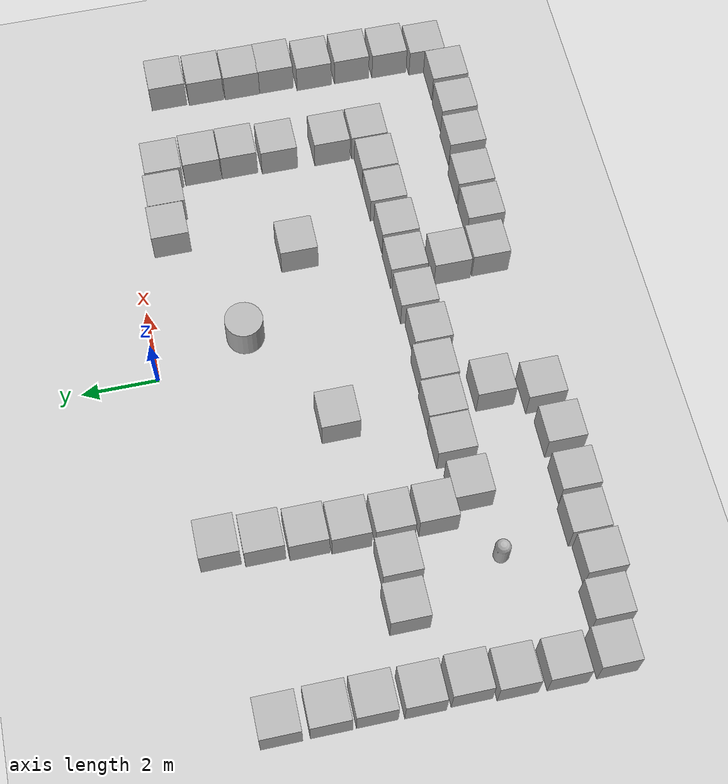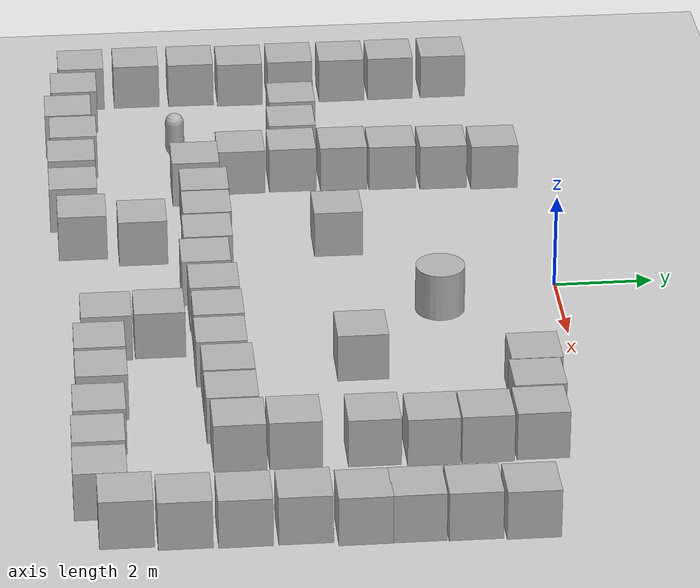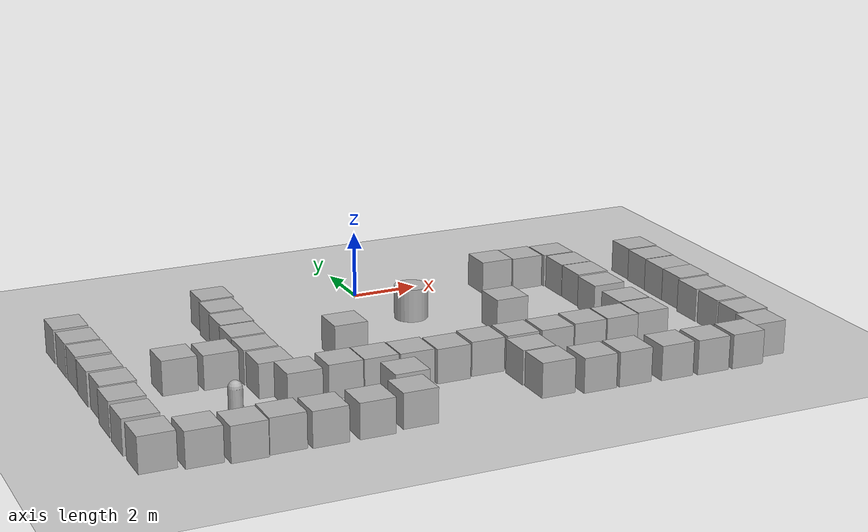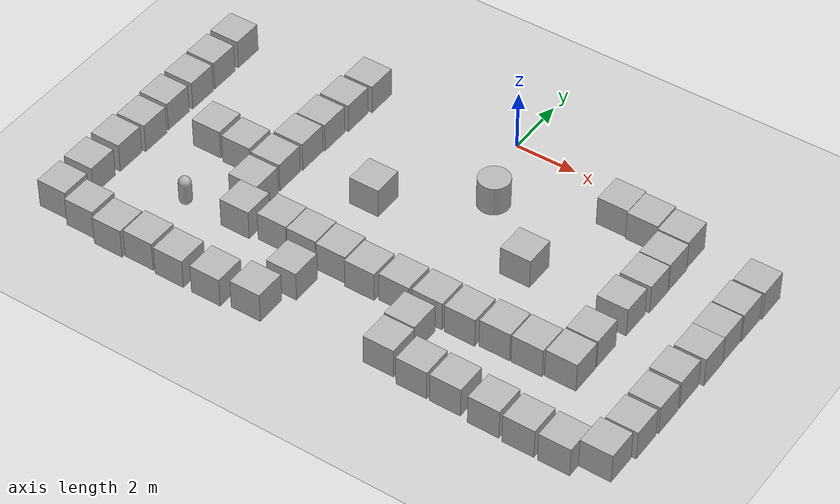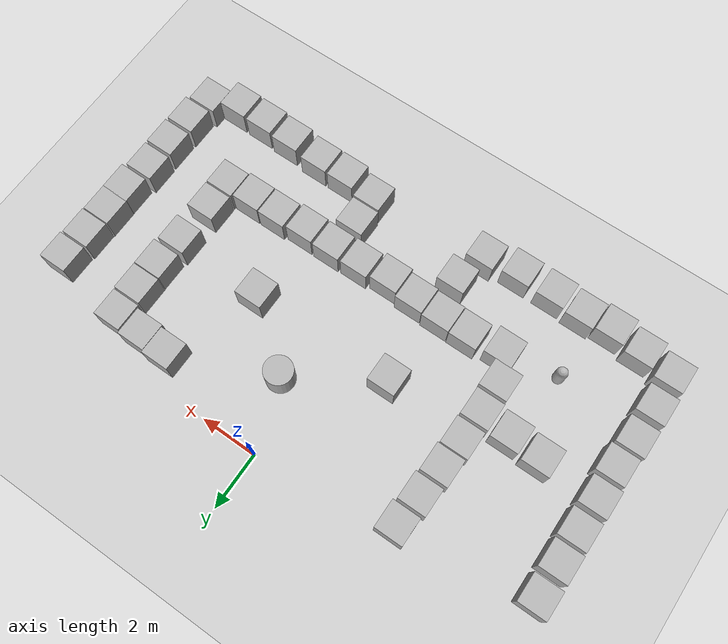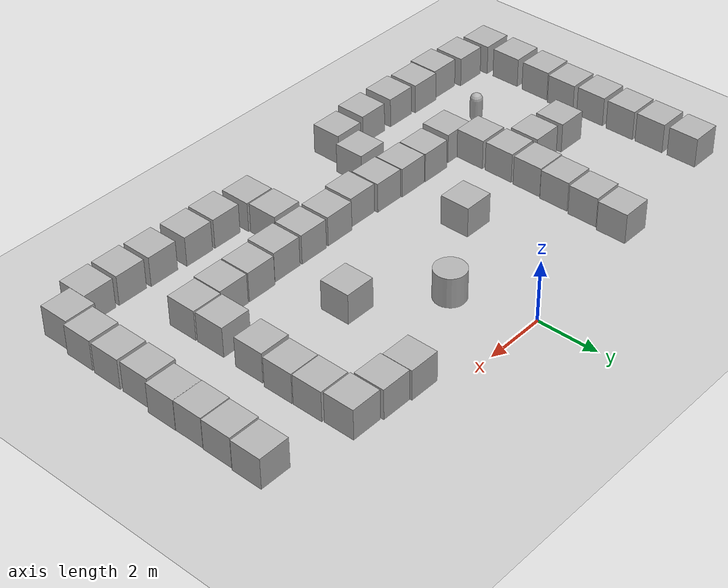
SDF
<sdf version="1.9">
 <world name="empty">
  <model name="ground_plane">
   <static>true</static>
   <link name="link">
    <collision name="collision">
     <geometry><plane><normal>0 0 1</normal><size>100 100</size></plane></geometry>
    </collision>
    <visual name="visual">
     <geometry><plane><normal>0 0 1</normal><size>100 100</size></plane></geometry>
     <material>
      <ambient>0.8 0.8 0.8 1</ambient>
      <diffuse>0.8 0.8 0.8 1</diffuse>
      <specular>0.8 0.8 0.8 1</specular>
     </material>
    </visual>
    <inertial>
     <mass>1</mass>
     <inertia><ixx>1</ixx><ixy>0</ixy><ixz>0</ixz><iyy>1</iyy><iyz>0</iyz><izz>1</izz></inertia>
    </inertial>
   </link>
  </model>
  <model name="box_2">
   <pose>4.13558 -0.985724 0.5 0 -0 0</pose>
   <link name="box_link">
    <inertial>
     <inertia><ixx>0.16666</ixx><ixy>0</ixy><ixz>0</ixz><iyy>0.16666</iyy><iyz>0</iyz><izz>0.16666</izz></inertia>
     <mass>1</mass>
    </inertial>
    <collision name="box_collision"><geometry><box><size>1 1 1</size></box></geometry></collision>
    <visual name="box_visual">
     <geometry><box><size>1 1 1</size></box></geometry>
     <material>
      <ambient>0.3 0.3 0.3 1</ambient>
      <diffuse>0.7 0.7 0.7 1</diffuse>
      <specular>1 1 1 1</specular>
     </material>
    </visual>
   </link>
   <static>false</static>
  </model>
  <model name="box_3">
   <pose>5.14532 -1.0495 0.5 0 -0 0</pose>
   <link name="box_link">
    <inertial>
     <inertia><ixx>0.16666</ixx><ixy>0</ixy><ixz>0</ixz><iyy>0.16666</iyy><iyz>0</iyz><izz>0.16666</izz></inertia>
     <mass>1</mass>
    </inertial>
    <collision name="box_collision"><geometry><box><size>1 1 1</size></box></geometry></collision>
    <visual name="box_visual">
     <geometry><box><size>1 1 1</size></box></geometry>
     <material>
      <ambient>0.3 0.3 0.3 1</ambient>
      <diffuse>0.7 0.7 0.7 1</diffuse>
      <specular>1 1 1 1</specular>
     </material>
    </visual>
   </link>
   <static>false</static>
  </model>
  <model name="box_4">
   <pose>6.19145 -1.12646 0.5 0 -0 0</pose>
   <link name="box_link">
    <inertial>
     <inertia><ixx>0.16666</ixx><ixy>0</ixy><ixz>0</ixz><iyy>0.16666</iyy><iyz>0</iyz><izz>0.16666</izz></inertia>
     <mass>1</mass>
    </inertial>
    <collision name="box_collision"><geometry><box><size>1 1 1</size></box></geometry></collision>
    <visual name="box_visual">
     <geometry><box><size>1 1 1</size></box></geometry>
     <material>
      <ambient>0.3 0.3 0.3 1</ambient>
      <diffuse>0.7 0.7 0.7 1</diffuse>
      <specular>1 1 1 1</specular>
     </material>
    </visual>
   </link>
   <static>false</static>
  </model>
  <model name="box_5">
   <pose>8.86919 -2.71605 0.5 0 -0 0</pose>
   <link name="box_link">
    <inertial>
     <inertia><ixx>0.16666</ixx><ixy>0</ixy><ixz>0</ixz><iyy>0.16666</iyy><iyz>0</iyz><izz>0.16666</izz></inertia>
     <mass>1</mass>
    </inertial>
    <collision name="box_collision"><geometry><box><size>1 1 1</size></box></geometry></collision>
    <visual name="box_visual">
     <geometry><box><size>1 1 1</size></box></geometry>
     <material>
      <ambient>0.3 0.3 0.3 1</ambient>
      <diffuse>0.7 0.7 0.7 1</diffuse>
      <specular>1 1 1 1</specular>
     </material>
    </visual>
   </link>
   <static>false</static>
  </model>
  <model name="box_6">
   <pose>6.22858 -2.1758 0.5 0 -0 0</pose>
   <link name="box_link">
    <inertial>
     <inertia><ixx>0.16666</ixx><ixy>0</ixy><ixz>0</ixz><iyy>0.16666</iyy><iyz>0</iyz><izz>0.16666</izz></inertia>
     <mass>1</mass>
    </inertial>
    <collision name="box_collision"><geometry><box><size>1 1 1</size></box></geometry></collision>
    <visual name="box_visual">
     <geometry><box><size>1 1 1</size></box></geometry>
     <material>
      <ambient>0.3 0.3 0.3 1</ambient>
      <diffuse>0.7 0.7 0.7 1</diffuse>
      <specular>1 1 1 1</specular>
     </material>
    </visual>
   </link>
   <static>false</static>
  </model>
  <model name="box_7">
   <pose>6.23565 -3.20198 0.5 0 -0 0</pose>
   <link name="box_link">
    <inertial>
     <inertia><ixx>0.16666</ixx><ixy>0</ixy><ixz>0</ixz><iyy>0.16666</iyy><iyz>0</iyz><izz>0.16666</izz></inertia>
     <mass>1</mass>
    </inertial>
    <collision name="box_collision"><geometry><box><size>1 1 1</size></box></geometry></collision>
    <visual name="box_visual">
     <geometry><box><size>1 1 1</size></box></geometry>
     <material>
      <ambient>0.3 0.3 0.3 1</ambient>
      <diffuse>0.7 0.7 0.7 1</diffuse>
      <specular>1 1 1 1</specular>
     </material>
    </visual>
   </link>
   <static>false</static>
  </model>
  <model name="box_8">
   <pose>6.1657 -4.3144 0.5 0 -0 0</pose>
   <link name="box_link">
    <inertial>
     <inertia><ixx>0.16666</ixx><ixy>0</ixy><ixz>0</ixz><iyy>0.16666</iyy><iyz>0</iyz><izz>0.16666</izz></inertia>
     <mass>1</mass>
    </inertial>
    <collision name="box_collision"><geometry><box><size>1 1 1</size></box></geometry></collision>
    <visual name="box_visual">
     <geometry><box><size>1 1 1</size></box></geometry>
     <material>
      <ambient>0.3 0.3 0.3 1</ambient>
      <diffuse>0.7 0.7 0.7 1</diffuse>
      <specular>1 1 1 1</specular>
     </material>
    </visual>
   </link>
   <static>false</static>
  </model>
  <model name="box_23">
   <pose>-4.83006 -0.710249 0.5 0 -0 0</pose>
   <link name="box_link">
    <inertial>
     <inertia><ixx>0.16666</ixx><ixy>0</ixy><ixz>0</ixz><iyy>0.16666</iyy><iyz>0</iyz><izz>0.16666</izz></inertia>
     <mass>1</mass>
    </inertial>
    <collision name="box_collision"><geometry><box><size>1 1 1</size></box></geometry></collision>
    <visual name="box_visual">
     <geometry><box><size>1 1 1</size></box></geometry>
     <material>
      <ambient>0.3 0.3 0.3 1</ambient>
      <diffuse>0.7 0.7 0.7 1</diffuse>
      <specular>1 1 1 1</specular>
     </material>
    </visual>
   </link>
   <static>false</static>
  </model>
  <model name="box_24">
   <pose>-4.92357 -1.79655 0.5 0 -0 0</pose>
   <link name="box_link">
    <inertial>
     <inertia><ixx>0.16666</ixx><ixy>0</ixy><ixz>0</ixz><iyy>0.16666</iyy><iyz>0</iyz><izz>0.16666</izz></inertia>
     <mass>1</mass>
    </inertial>
    <collision name="box_collision"><geometry><box><size>1 1 1</size></box></geometry></collision>
    <visual name="box_visual">
     <geometry><box><size>1 1 1</size></box></geometry>
     <material>
      <ambient>0.3 0.3 0.3 1</ambient>
      <diffuse>0.7 0.7 0.7 1</diffuse>
      <specular>1 1 1 1</specular>
     </material>
    </visual>
   </link>
   <static>false</static>
  </model>
  <model name="box_25">
   <pose>-4.99469 -2.88184 0.5 0 -0 0</pose>
   <link name="box_link">
    <inertial>
     <inertia><ixx>0.16666</ixx><ixy>0</ixy><ixz>0</ixz><iyy>0.16666</iyy><iyz>0</iyz><izz>0.16666</izz></inertia>
     <mass>1</mass>
    </inertial>
    <collision name="box_collision"><geometry><box><size>1 1 1</size></box></geometry></collision>
    <visual name="box_visual">
     <geometry><box><size>1 1 1</size></box></geometry>
     <material>
      <ambient>0.3 0.3 0.3 1</ambient>
      <diffuse>0.7 0.7 0.7 1</diffuse>
      <specular>1 1 1 1</specular>
     </material>
    </visual>
   </link>
   <static>false</static>
  </model>
  <model name="box_26">
   <pose>-5.04236 -3.92055 0.5 0 -0 0</pose>
   <link name="box_link">
    <inertial>
     <inertia><ixx>0.16666</ixx><ixy>0</ixy><ixz>0</ixz><iyy>0.16666</iyy><iyz>0</iyz><izz>0.16666</izz></inertia>
     <mass>1</mass>
    </inertial>
    <collision name="box_collision"><geometry><box><size>1 1 1</size></box></geometry></collision>
    <visual name="box_visual">
     <geometry><box><size>1 1 1</size></box></geometry>
     <material>
      <ambient>0.3 0.3 0.3 1</ambient>
      <diffuse>0.7 0.7 0.7 1</diffuse>
      <specular>1 1 1 1</specular>
     </material>
    </visual>
   </link>
   <static>false</static>
  </model>
  <model name="box_27">
   <pose>-5.06868 -5.00835 0.5 0 -0 0</pose>
   <link name="box_link">
    <inertial>
     <inertia><ixx>0.16666</ixx><ixy>0</ixy><ixz>0</ixz><iyy>0.16666</iyy><iyz>0</iyz><izz>0.16666</izz></inertia>
     <mass>1</mass>
    </inertial>
    <collision name="box_collision"><geometry><box><size>1 1 1</size></box></geometry></collision>
    <visual name="box_visual">
     <geometry><box><size>1 1 1</size></box></geometry>
     <material>
      <ambient>0.3 0.3 0.3 1</ambient>
      <diffuse>0.7 0.7 0.7 1</diffuse>
      <specular>1 1 1 1</specular>
     </material>
    </visual>
   </link>
   <static>false</static>
  </model>
  <model name="box_28">
   <pose>-5.0497 -6.10238 0.5 0 -0 0</pose>
   <link name="box_link">
    <inertial>
     <inertia><ixx>0.16666</ixx><ixy>0</ixy><ixz>0</ixz><iyy>0.16666</iyy><iyz>0</iyz><izz>0.16666</izz></inertia>
     <mass>1</mass>
    </inertial>
    <collision name="box_collision"><geometry><box><size>1 1 1</size></box></geometry></collision>
    <visual name="box_visual">
     <geometry><box><size>1 1 1</size></box></geometry>
     <material>
      <ambient>0.3 0.3 0.3 1</ambient>
      <diffuse>0.7 0.7 0.7 1</diffuse>
      <specular>1 1 1 1</specular>
     </material>
    </visual>
   </link>
   <static>false</static>
  </model>
  <model name="box_29">
   <pose>6.12407 -5.79524 0.5 0 -0 0</pose>
   <link name="box_link">
    <inertial>
     <inertia><ixx>0.16666</ixx><ixy>0</ixy><ixz>0</ixz><iyy>0.16666</iyy><iyz>0</iyz><izz>0.16666</izz></inertia>
     <mass>1</mass>
    </inertial>
    <collision name="box_collision"><geometry><box><size>1 1 1</size></box></geometry></collision>
    <visual name="box_visual">
     <geometry><box><size>1 1 1</size></box></geometry>
     <material>
      <ambient>0.3 0.3 0.3 1</ambient>
      <diffuse>0.7 0.7 0.7 1</diffuse>
      <specular>1 1 1 1</specular>
     </material>
    </visual>
   </link>
   <static>false</static>
  </model>
  <model name="box_30">
   <pose>6.13132 -6.8447 0.5 0 -0 0</pose>
   <link name="box_link">
    <inertial>
     <inertia><ixx>0.16666</ixx><ixy>0</ixy><ixz>0</ixz><iyy>0.16666</iyy><iyz>0</iyz><izz>0.16666</izz></inertia>
     <mass>1</mass>
    </inertial>
    <collision name="box_collision"><geometry><box><size>1 1 1</size></box></geometry></collision>
    <visual name="box_visual">
     <geometry><box><size>1 1 1</size></box></geometry>
     <material>
      <ambient>0.3 0.3 0.3 1</ambient>
      <diffuse>0.7 0.7 0.7 1</diffuse>
      <specular>1 1 1 1</specular>
     </material>
    </visual>
   </link>
   <static>false</static>
  </model>
  <model name="box_31">
   <pose>5.09836 -6.91237 0.5 0 -0 0</pose>
   <link name="box_link">
    <inertial>
     <inertia><ixx>0.16666</ixx><ixy>0</ixy><ixz>0</ixz><iyy>0.16666</iyy><iyz>0</iyz><izz>0.16666</izz></inertia>
     <mass>1</mass>
    </inertial>
    <collision name="box_collision"><geometry><box><size>1 1 1</size></box></geometry></collision>
    <visual name="box_visual">
     <geometry><box><size>1 1 1</size></box></geometry>
     <material>
      <ambient>0.3 0.3 0.3 1</ambient>
      <diffuse>0.7 0.7 0.7 1</diffuse>
      <specular>1 1 1 1</specular>
     </material>
    </visual>
   </link>
   <static>false</static>
  </model>
  <model name="box_32">
   <pose>4.05564 -6.91326 0.5 0 -0 0</pose>
   <link name="box_link">
    <inertial>
     <inertia><ixx>0.16666</ixx><ixy>0</ixy><ixz>0</ixz><iyy>0.16666</iyy><iyz>0</iyz><izz>0.16666</izz></inertia>
     <mass>1</mass>
    </inertial>
    <collision name="box_collision"><geometry><box><size>1 1 1</size></box></geometry></collision>
    <visual name="box_visual">
     <geometry><box><size>1 1 1</size></box></geometry>
     <material>
      <ambient>0.3 0.3 0.3 1</ambient>
      <diffuse>0.7 0.7 0.7 1</diffuse>
      <specular>1 1 1 1</specular>
     </material>
    </visual>
   </link>
   <static>false</static>
  </model>
  <model name="box_33">
   <pose>2.97347 -6.99341 0.5 0 -0 0</pose>
   <link name="box_link">
    <inertial>
     <inertia><ixx>0.16666</ixx><ixy>0</ixy><ixz>0</ixz><iyy>0.16666</iyy><iyz>0</iyz><izz>0.16666</izz></inertia>
     <mass>1</mass>
    </inertial>
    <collision name="box_collision"><geometry><box><size>1 1 1</size></box></geometry></collision>
    <visual name="box_visual">
     <geometry><box><size>1 1 1</size></box></geometry>
     <material>
      <ambient>0.3 0.3 0.3 1</ambient>
      <diffuse>0.7 0.7 0.7 1</diffuse>
      <specular>1 1 1 1</specular>
     </material>
    </visual>
   </link>
   <static>false</static>
  </model>
  <model name="box_34">
   <pose>1.89461 -6.98248 0.5 0 -0 0</pose>
   <link name="box_link">
    <inertial>
     <inertia><ixx>0.16666</ixx><ixy>0</ixy><ixz>0</ixz><iyy>0.16666</iyy><iyz>0</iyz><izz>0.16666</izz></inertia>
     <mass>1</mass>
    </inertial>
    <collision name="box_collision"><geometry><box><size>1 1 1</size></box></geometry></collision>
    <visual name="box_visual">
     <geometry><box><size>1 1 1</size></box></geometry>
     <material>
      <ambient>0.3 0.3 0.3 1</ambient>
      <diffuse>0.7 0.7 0.7 1</diffuse>
      <specular>1 1 1 1</specular>
     </material>
    </visual>
   </link>
   <static>false</static>
  </model>
  <model name="box_35">
   <pose>0.79959 -7.00351 0.5 0 -0 0</pose>
   <link name="box_link">
    <inertial>
     <inertia><ixx>0.16666</ixx><ixy>0</ixy><ixz>0</ixz><iyy>0.16666</iyy><iyz>0</iyz><izz>0.16666</izz></inertia>
     <mass>1</mass>
    </inertial>
    <collision name="box_collision"><geometry><box><size>1 1 1</size></box></geometry></collision>
    <visual name="box_visual">
     <geometry><box><size>1 1 1</size></box></geometry>
     <material>
      <ambient>0.3 0.3 0.3 1</ambient>
      <diffuse>0.7 0.7 0.7 1</diffuse>
      <specular>1 1 1 1</specular>
     </material>
    </visual>
   </link>
   <static>false</static>
  </model>
  <model name="box_36">
   <pose>-0.288194 -7.10821 0.5 0 -0 0</pose>
   <link name="box_link">
    <inertial>
     <inertia><ixx>0.16666</ixx><ixy>0</ixy><ixz>0</ixz><iyy>0.16666</iyy><iyz>0</iyz><izz>0.16666</izz></inertia>
     <mass>1</mass>
    </inertial>
    <collision name="box_collision"><geometry><box><size>1 1 1</size></box></geometry></collision>
    <visual name="box_visual">
     <geometry><box><size>1 1 1</size></box></geometry>
     <material>
      <ambient>0.3 0.3 0.3 1</ambient>
      <diffuse>0.7 0.7 0.7 1</diffuse>
      <specular>1 1 1 1</specular>
     </material>
    </visual>
   </link>
   <static>false</static>
  </model>
  <model name="box_37">
   <pose>-1.33272 -7.01143 0.5 0 -0 0</pose>
   <link name="box_link">
    <inertial>
     <inertia><ixx>0.16666</ixx><ixy>0</ixy><ixz>0</ixz><iyy>0.16666</iyy><iyz>0</iyz><izz>0.16666</izz></inertia>
     <mass>1</mass>
    </inertial>
    <collision name="box_collision"><geometry><box><size>1 1 1</size></box></geometry></collision>
    <visual name="box_visual">
     <geometry><box><size>1 1 1</size></box></geometry>
     <material>
      <ambient>0.3 0.3 0.3 1</ambient>
      <diffuse>0.7 0.7 0.7 1</diffuse>
      <specular>1 1 1 1</specular>
     </material>
    </visual>
   </link>
   <static>false</static>
  </model>
  <model name="box_38">
   <pose>-2.36921 -6.97202 0.5 0 -0 0</pose>
   <link name="box_link">
    <inertial>
     <inertia><ixx>0.16666</ixx><ixy>0</ixy><ixz>0</ixz><iyy>0.16666</iyy><iyz>0</iyz><izz>0.16666</izz></inertia>
     <mass>1</mass>
    </inertial>
    <collision name="box_collision"><geometry><box><size>1 1 1</size></box></geometry></collision>
    <visual name="box_visual">
     <geometry><box><size>1 1 1</size></box></geometry>
     <material>
      <ambient>0.3 0.3 0.3 1</ambient>
      <diffuse>0.7 0.7 0.7 1</diffuse>
      <specular>1 1 1 1</specular>
     </material>
    </visual>
   </link>
   <static>false</static>
  </model>
  <model name="box_39">
   <pose>-3.39624 -6.95954 0.5 0 -0 0</pose>
   <link name="box_link">
    <inertial>
     <inertia><ixx>0.16666</ixx><ixy>0</ixy><ixz>0</ixz><iyy>0.16666</iyy><iyz>0</iyz><izz>0.16666</izz></inertia>
     <mass>1</mass>
    </inertial>
    <collision name="box_collision"><geometry><box><size>1 1 1</size></box></geometry></collision>
    <visual name="box_visual">
     <geometry><box><size>1 1 1</size></box></geometry>
     <material>
      <ambient>0.3 0.3 0.3 1</ambient>
      <diffuse>0.7 0.7 0.7 1</diffuse>
      <specular>1 1 1 1</specular>
     </material>
    </visual>
   </link>
   <static>false</static>
  </model>
  <model name="box_40">
   <pose>-4.61406 -7.09221 0.5 0 -0 0</pose>
   <link name="box_link">
    <inertial>
     <inertia><ixx>0.16666</ixx><ixy>0</ixy><ixz>0</ixz><iyy>0.16666</iyy><iyz>0</iyz><izz>0.16666</izz></inertia>
     <mass>1</mass>
    </inertial>
    <collision name="box_collision"><geometry><box><size>1 1 1</size></box></geometry></collision>
    <visual name="box_visual">
     <geometry><box><size>1 1 1</size></box></geometry>
     <material>
      <ambient>0.3 0.3 0.3 1</ambient>
      <diffuse>0.7 0.7 0.7 1</diffuse>
      <specular>1 1 1 1</specular>
     </material>
    </visual>
   </link>
   <static>false</static>
  </model>
  <model name="box_41">
   <pose>-2.12213 -4.28298 0.5 0 -0 0</pose>
   <link name="box_link">
    <inertial>
     <inertia><ixx>0.16666</ixx><ixy>0</ixy><ixz>0</ixz><iyy>0.16666</iyy><iyz>0</iyz><izz>0.16666</izz></inertia>
     <mass>1</mass>
    </inertial>
    <collision name="box_collision"><geometry><box><size>1 1 1</size></box></geometry></collision>
    <visual name="box_visual">
     <geometry><box><size>1 1 1</size></box></geometry>
     <material>
      <ambient>0.3 0.3 0.3 1</ambient>
      <diffuse>0.7 0.7 0.7 1</diffuse>
      <specular>1 1 1 1</specular>
     </material>
    </visual>
   </link>
   <static>false</static>
  </model>
  <model name="box_42">
   <pose>2.97792 -4.23981 0.5 0 -0 0</pose>
   <link name="box_link">
    <inertial>
     <inertia><ixx>0.16666</ixx><ixy>0</ixy><ixz>0</ixz><iyy>0.16666</iyy><iyz>0</iyz><izz>0.16666</izz></inertia>
     <mass>1</mass>
    </inertial>
    <collision name="box_collision"><geometry><box><size>1 1 1</size></box></geometry></collision>
    <visual name="box_visual">
     <geometry><box><size>1 1 1</size></box></geometry>
     <material>
      <ambient>0.3 0.3 0.3 1</ambient>
      <diffuse>0.7 0.7 0.7 1</diffuse>
      <specular>1 1 1 1</specular>
     </material>
    </visual>
   </link>
   <static>false</static>
  </model>
  <model name="cylinder">
   <pose>0.77625 -2.44097 0.5 0 -0 0</pose>
   <link name="cylinder_link">
    <inertial>
     <inertia>
      <ixx>0.14580000000000001</ixx>
      <ixy>0</ixy>
      <ixz>0</ixz>
      <iyy>0.14580000000000001</iyy>
      <iyz>0</iyz>
      <izz>0.125</izz>
     </inertia>
     <mass>1</mass>
    </inertial>
    <collision name="cylinder_collision">
     <geometry><cylinder><radius>0.5</radius><length>1</length></cylinder></geometry>
    </collision>
    <visual name="cylinder_visual">
     <geometry><cylinder><radius>0.5</radius><length>1</length></cylinder></geometry>
     <material>
      <ambient>0.3 0.3 0.3 1</ambient>
      <diffuse>0.7 0.7 0.7 1</diffuse>
      <specular>1 1 1 1</specular>
     </material>
    </visual>
   </link>
   <static>false</static>
  </model>
  <model name="box_47">
   <pose>8.912 -1.65772 0.5 0 -0 0</pose>
   <link name="box_link">
    <inertial>
     <inertia><ixx>0.16666</ixx><ixy>0</ixy><ixz>0</ixz><iyy>0.16666</iyy><iyz>0</iyz><izz>0.16666</izz></inertia>
     <mass>1</mass>
    </inertial>
    <collision name="box_collision"><geometry><box><size>1 1 1</size></box></geometry></collision>
    <visual name="box_visual">
     <geometry><box><size>1 1 1</size></box></geometry>
     <material>
      <ambient>0.3 0.3 0.3 1</ambient>
      <diffuse>0.7 0.7 0.7 1</diffuse>
      <specular>1 1 1 1</specular>
     </material>
    </visual>
   </link>
   <static>false</static>
  </model>
  <model name="box_48">
   <pose>8.84904 -3.74836 0.5 0 -0 0</pose>
   <link name="box_link">
    <inertial>
     <inertia><ixx>0.16666</ixx><ixy>0</ixy><ixz>0</ixz><iyy>0.16666</iyy><iyz>0</iyz><izz>0.16666</izz></inertia>
     <mass>1</mass>
    </inertial>
    <collision name="box_collision"><geometry><box><size>1 1 1</size></box></geometry></collision>
    <visual name="box_visual">
     <geometry><box><size>1 1 1</size></box></geometry>
     <material>
      <ambient>0.3 0.3 0.3 1</ambient>
      <diffuse>0.7 0.7 0.7 1</diffuse>
      <specular>1 1 1 1</specular>
     </material>
    </visual>
   </link>
   <static>false</static>
  </model>
  <model name="box_49">
   <pose>8.85691 -4.72791 0.5 0 -0 0</pose>
   <link name="box_link">
    <inertial>
     <inertia><ixx>0.16666</ixx><ixy>0</ixy><ixz>0</ixz><iyy>0.16666</iyy><iyz>0</iyz><izz>0.16666</izz></inertia>
     <mass>1</mass>
    </inertial>
    <collision name="box_collision"><geometry><box><size>1 1 1</size></box></geometry></collision>
    <visual name="box_visual">
     <geometry><box><size>1 1 1</size></box></geometry>
     <material>
      <ambient>0.3 0.3 0.3 1</ambient>
      <diffuse>0.7 0.7 0.7 1</diffuse>
      <specular>1 1 1 1</specular>
     </material>
    </visual>
   </link>
   <static>false</static>
  </model>
  <model name="box_50">
   <pose>8.73808 -5.81409 0.5 0 -0 0</pose>
   <link name="box_link">
    <inertial>
     <inertia><ixx>0.16666</ixx><ixy>0</ixy><ixz>0</ixz><iyy>0.16666</iyy><iyz>0</iyz><izz>0.16666</izz></inertia>
     <mass>1</mass>
    </inertial>
    <collision name="box_collision"><geometry><box><size>1 1 1</size></box></geometry></collision>
    <visual name="box_visual">
     <geometry><box><size>1 1 1</size></box></geometry>
     <material>
      <ambient>0.3 0.3 0.3 1</ambient>
      <diffuse>0.7 0.7 0.7 1</diffuse>
      <specular>1 1 1 1</specular>
     </material>
    </visual>
   </link>
   <static>false</static>
  </model>
  <model name="box_51">
   <pose>8.74634 -6.90855 0.5 0 -0 0</pose>
   <link name="box_link">
    <inertial>
     <inertia><ixx>0.16666</ixx><ixy>0</ixy><ixz>0</ixz><iyy>0.16666</iyy><iyz>0</iyz><izz>0.16666</izz></inertia>
     <mass>1</mass>
    </inertial>
    <collision name="box_collision"><geometry><box><size>1 1 1</size></box></geometry></collision>
    <visual name="box_visual">
     <geometry><box><size>1 1 1</size></box></geometry>
     <material>
      <ambient>0.3 0.3 0.3 1</ambient>
      <diffuse>0.7 0.7 0.7 1</diffuse>
      <specular>1 1 1 1</specular>
     </material>
    </visual>
   </link>
   <static>false</static>
  </model>
  <model name="box_52">
   <pose>8.72264 -8.00232 0.5 0 -0 0</pose>
   <link name="box_link">
    <inertial>
     <inertia><ixx>0.16666</ixx><ixy>0</ixy><ixz>0</ixz><iyy>0.16666</iyy><iyz>0</iyz><izz>0.16666</izz></inertia>
     <mass>1</mass>
    </inertial>
    <collision name="box_collision"><geometry><box><size>1 1 1</size></box></geometry></collision>
    <visual name="box_visual">
     <geometry><box><size>1 1 1</size></box></geometry>
     <material>
      <ambient>0.3 0.3 0.3 1</ambient>
      <diffuse>0.7 0.7 0.7 1</diffuse>
      <specular>1 1 1 1</specular>
     </material>
    </visual>
   </link>
   <static>false</static>
  </model>
  <model name="box_53">
   <pose>8.60227 -9.06339 0.5 0 -0 0</pose>
   <link name="box_link">
    <inertial>
     <inertia><ixx>0.16666</ixx><ixy>0</ixy><ixz>0</ixz><iyy>0.16666</iyy><iyz>0</iyz><izz>0.16666</izz></inertia>
     <mass>1</mass>
    </inertial>
    <collision name="box_collision"><geometry><box><size>1 1 1</size></box></geometry></collision>
    <visual name="box_visual">
     <geometry><box><size>1 1 1</size></box></geometry>
     <material>
      <ambient>0.3 0.3 0.3 1</ambient>
      <diffuse>0.7 0.7 0.7 1</diffuse>
      <specular>1 1 1 1</specular>
     </material>
    </visual>
   </link>
   <static>false</static>
  </model>
  <model name="box_54">
   <pose>7.60043 -9.49393 0.5 0 -0 0</pose>
   <link name="box_link">
    <inertial>
     <inertia><ixx>0.16666</ixx><ixy>0</ixy><ixz>0</ixz><iyy>0.16666</iyy><iyz>0</iyz><izz>0.16666</izz></inertia>
     <mass>1</mass>
    </inertial>
    <collision name="box_collision"><geometry><box><size>1 1 1</size></box></geometry></collision>
    <visual name="box_visual">
     <geometry><box><size>1 1 1</size></box></geometry>
     <material>
      <ambient>0.3 0.3 0.3 1</ambient>
      <diffuse>0.7 0.7 0.7 1</diffuse>
      <specular>1 1 1 1</specular>
     </material>
    </visual>
   </link>
   <static>false</static>
  </model>
  <model name="box_55">
   <pose>6.48292 -9.48347 0.5 0 -0 0</pose>
   <link name="box_link">
    <inertial>
     <inertia><ixx>0.16666</ixx><ixy>0</ixy><ixz>0</ixz><iyy>0.16666</iyy><iyz>0</iyz><izz>0.16666</izz></inertia>
     <mass>1</mass>
    </inertial>
    <collision name="box_collision"><geometry><box><size>1 1 1</size></box></geometry></collision>
    <visual name="box_visual">
     <geometry><box><size>1 1 1</size></box></geometry>
     <material>
      <ambient>0.3 0.3 0.3 1</ambient>
      <diffuse>0.7 0.7 0.7 1</diffuse>
      <specular>1 1 1 1</specular>
     </material>
    </visual>
   </link>
   <static>false</static>
  </model>
  <model name="box_56">
   <pose>5.35585 -9.43458 0.5 0 -0 0</pose>
   <link name="box_link">
    <inertial>
     <inertia><ixx>0.16666</ixx><ixy>0</ixy><ixz>0</ixz><iyy>0.16666</iyy><iyz>0</iyz><izz>0.16666</izz></inertia>
     <mass>1</mass>
    </inertial>
    <collision name="box_collision"><geometry><box><size>1 1 1</size></box></geometry></collision>
    <visual name="box_visual">
     <geometry><box><size>1 1 1</size></box></geometry>
     <material>
      <ambient>0.3 0.3 0.3 1</ambient>
      <diffuse>0.7 0.7 0.7 1</diffuse>
      <specular>1 1 1 1</specular>
     </material>
    </visual>
   </link>
   <static>false</static>
  </model>
  <model name="box_57">
   <pose>4.08357 -9.35195 0.5 0 -0 0</pose>
   <link name="box_link">
    <inertial>
     <inertia><ixx>0.16666</ixx><ixy>0</ixy><ixz>0</ixz><iyy>0.16666</iyy><iyz>0</iyz><izz>0.16666</izz></inertia>
     <mass>1</mass>
    </inertial>
    <collision name="box_collision"><geometry><box><size>1 1 1</size></box></geometry></collision>
    <visual name="box_visual">
     <geometry><box><size>1 1 1</size></box></geometry>
     <material>
      <ambient>0.3 0.3 0.3 1</ambient>
      <diffuse>0.7 0.7 0.7 1</diffuse>
      <specular>1 1 1 1</specular>
     </material>
    </visual>
   </link>
   <static>false</static>
  </model>
  <model name="box_58">
   <pose>2.99191 -9.35143 0.5 0 -0 0</pose>
   <link name="box_link">
    <inertial>
     <inertia><ixx>0.16666</ixx><ixy>0</ixy><ixz>0</ixz><iyy>0.16666</iyy><iyz>0</iyz><izz>0.16666</izz></inertia>
     <mass>1</mass>
    </inertial>
    <collision name="box_collision"><geometry><box><size>1 1 1</size></box></geometry></collision>
    <visual name="box_visual">
     <geometry><box><size>1 1 1</size></box></geometry>
     <material>
      <ambient>0.3 0.3 0.3 1</ambient>
      <diffuse>0.7 0.7 0.7 1</diffuse>
      <specular>1 1 1 1</specular>
     </material>
    </visual>
   </link>
   <static>false</static>
  </model>
  <model name="box_59">
   <pose>1.76958 -8.1418 0.5 0 -0 0</pose>
   <link name="box_link">
    <inertial>
     <inertia><ixx>0.16666</ixx><ixy>0</ixy><ixz>0</ixz><iyy>0.16666</iyy><iyz>0</iyz><izz>0.16666</izz></inertia>
     <mass>1</mass>
    </inertial>
    <collision name="box_collision"><geometry><box><size>1 1 1</size></box></geometry></collision>
    <visual name="box_visual">
     <geometry><box><size>1 1 1</size></box></geometry>
     <material>
      <ambient>0.3 0.3 0.3 1</ambient>
      <diffuse>0.7 0.7 0.7 1</diffuse>
      <specular>1 1 1 1</specular>
     </material>
    </visual>
   </link>
   <static>false</static>
  </model>
  <model name="box_60">
   <pose>1.80445 -9.18927 0.5 0 -0 0</pose>
   <link name="box_link">
    <inertial>
     <inertia><ixx>0.16666</ixx><ixy>0</ixy><ixz>0</ixz><iyy>0.16666</iyy><iyz>0</iyz><izz>0.16666</izz></inertia>
     <mass>1</mass>
    </inertial>
    <collision name="box_collision"><geometry><box><size>1 1 1</size></box></geometry></collision>
    <visual name="box_visual">
     <geometry><box><size>1 1 1</size></box></geometry>
     <material>
      <ambient>0.3 0.3 0.3 1</ambient>
      <diffuse>0.7 0.7 0.7 1</diffuse>
      <specular>1 1 1 1</specular>
     </material>
    </visual>
   </link>
   <static>false</static>
  </model>
  <model name="box_96">
   <pose>-6.18601 -4.9292 0.5 0 -0 0</pose>
   <link name="box_link">
    <inertial>
     <inertia><ixx>0.16666</ixx><ixy>0</ixy><ixz>0</ixz><iyy>0.16666</iyy><iyz>0</iyz><izz>0.16666</izz></inertia>
     <mass>1</mass>
    </inertial>
    <collision name="box_collision"><geometry><box><size>1 1 1</size></box></geometry></collision>
    <visual name="box_visual">
     <geometry><box><size>1 1 1</size></box></geometry>
     <material>
      <ambient>0.3 0.3 0.3 1</ambient>
      <diffuse>0.7 0.7 0.7 1</diffuse>
      <specular>1 1 1 1</specular>
     </material>
    </visual>
   </link>
   <static>false</static>
  </model>
  <model name="box_97">
   <pose>-7.32565 -4.84687 0.5 0 -0 0</pose>
   <link name="box_link">
    <inertial>
     <inertia><ixx>0.16666</ixx><ixy>0</ixy><ixz>0</ixz><iyy>0.16666</iyy><iyz>0</iyz><izz>0.16666</izz></inertia>
     <mass>1</mass>
    </inertial>
    <collision name="box_collision"><geometry><box><size>1 1 1</size></box></geometry></collision>
    <visual name="box_visual">
     <geometry><box><size>1 1 1</size></box></geometry>
     <material>
      <ambient>0.3 0.3 0.3 1</ambient>
      <diffuse>0.7 0.7 0.7 1</diffuse>
      <specular>1 1 1 1</specular>
     </material>
    </visual>
   </link>
   <static>false</static>
  </model>
  <model name="box_98">
   <pose>-9.33203 -1.32601 0.5 0 -0 0</pose>
   <link name="box_link">
    <inertial>
     <inertia><ixx>0.16666</ixx><ixy>0</ixy><ixz>0</ixz><iyy>0.16666</iyy><iyz>0</iyz><izz>0.16666</izz></inertia>
     <mass>1</mass>
    </inertial>
    <collision name="box_collision"><geometry><box><size>1 1 1</size></box></geometry></collision>
    <visual name="box_visual">
     <geometry><box><size>1 1 1</size></box></geometry>
     <material>
      <ambient>0.3 0.3 0.3 1</ambient>
      <diffuse>0.7 0.7 0.7 1</diffuse>
      <specular>1 1 1 1</specular>
     </material>
    </visual>
   </link>
   <static>false</static>
  </model>
  <model name="box_99">
   <pose>-9.32202 -2.5062 0.5 0 -0 0</pose>
   <link name="box_link">
    <inertial>
     <inertia><ixx>0.16666</ixx><ixy>0</ixy><ixz>0</ixz><iyy>0.16666</iyy><iyz>0</iyz><izz>0.16666</izz></inertia>
     <mass>1</mass>
    </inertial>
    <collision name="box_collision"><geometry><box><size>1 1 1</size></box></geometry></collision>
    <visual name="box_visual">
     <geometry><box><size>1 1 1</size></box></geometry>
     <material>
      <ambient>0.3 0.3 0.3 1</ambient>
      <diffuse>0.7 0.7 0.7 1</diffuse>
      <specular>1 1 1 1</specular>
     </material>
    </visual>
   </link>
   <static>false</static>
  </model>
  <model name="box_100">
   <pose>-9.31311 -3.59791 0.5 0 -0 0</pose>
   <link name="box_link">
    <inertial>
     <inertia><ixx>0.16666</ixx><ixy>0</ixy><ixz>0</ixz><iyy>0.16666</iyy><iyz>0</iyz><izz>0.16666</izz></inertia>
     <mass>1</mass>
    </inertial>
    <collision name="box_collision"><geometry><box><size>1 1 1</size></box></geometry></collision>
    <visual name="box_visual">
     <geometry><box><size>1 1 1</size></box></geometry>
     <material>
      <ambient>0.3 0.3 0.3 1</ambient>
      <diffuse>0.7 0.7 0.7 1</diffuse>
      <specular>1 1 1 1</specular>
     </material>
    </visual>
   </link>
   <static>false</static>
  </model>
  <model name="box_101">
   <pose>-9.33342 -4.74777 0.5 0 -0 0</pose>
   <link name="box_link">
    <inertial>
     <inertia><ixx>0.16666</ixx><ixy>0</ixy><ixz>0</ixz><iyy>0.16666</iyy><iyz>0</iyz><izz>0.16666</izz></inertia>
     <mass>1</mass>
    </inertial>
    <collision name="box_collision"><geometry><box><size>1 1 1</size></box></geometry></collision>
    <visual name="box_visual">
     <geometry><box><size>1 1 1</size></box></geometry>
     <material>
      <ambient>0.3 0.3 0.3 1</ambient>
      <diffuse>0.7 0.7 0.7 1</diffuse>
      <specular>1 1 1 1</specular>
     </material>
    </visual>
   </link>
   <static>false</static>
  </model>
  <model name="box_102">
   <pose>-9.39331 -8.16634 0.5 0 -0 0</pose>
   <link name="box_link">
    <inertial>
     <inertia><ixx>0.16666</ixx><ixy>0</ixy><ixz>0</ixz><iyy>0.16666</iyy><iyz>0</iyz><izz>0.16666</izz></inertia>
     <mass>1</mass>
    </inertial>
    <collision name="box_collision"><geometry><box><size>1 1 1</size></box></geometry></collision>
    <visual name="box_visual">
     <geometry><box><size>1 1 1</size></box></geometry>
     <material>
      <ambient>0.3 0.3 0.3 1</ambient>
      <diffuse>0.7 0.7 0.7 1</diffuse>
      <specular>1 1 1 1</specular>
     </material>
    </visual>
   </link>
   <static>false</static>
  </model>
  <model name="box_103">
   <pose>-9.29586 -5.86989 0.5 0 -0 0</pose>
   <link name="box_link">
    <inertial>
     <inertia><ixx>0.16666</ixx><ixy>0</ixy><ixz>0</ixz><iyy>0.16666</iyy><iyz>0</iyz><izz>0.16666</izz></inertia>
     <mass>1</mass>
    </inertial>
    <collision name="box_collision"><geometry><box><size>1 1 1</size></box></geometry></collision>
    <visual name="box_visual">
     <geometry><box><size>1 1 1</size></box></geometry>
     <material>
      <ambient>0.3 0.3 0.3 1</ambient>
      <diffuse>0.7 0.7 0.7 1</diffuse>
      <specular>1 1 1 1</specular>
     </material>
    </visual>
   </link>
   <static>false</static>
  </model>
  <model name="box_104">
   <pose>-9.37485 -6.9593 0.5 0 -0 0</pose>
   <link name="box_link">
    <inertial>
     <inertia><ixx>0.16666</ixx><ixy>0</ixy><ixz>0</ixz><iyy>0.16666</iyy><iyz>0</iyz><izz>0.16666</izz></inertia>
     <mass>1</mass>
    </inertial>
    <collision name="box_collision"><geometry><box><size>1 1 1</size></box></geometry></collision>
    <visual name="box_visual">
     <geometry><box><size>1 1 1</size></box></geometry>
     <material>
      <ambient>0.3 0.3 0.3 1</ambient>
      <diffuse>0.7 0.7 0.7 1</diffuse>
      <specular>1 1 1 1</specular>
     </material>
    </visual>
   </link>
   <static>false</static>
  </model>
  <model name="box_105">
   <pose>-9.36536 -9.38736 0.5 0 -0 0</pose>
   <link name="box_link">
    <inertial>
     <inertia><ixx>0.16666</ixx><ixy>0</ixy><ixz>0</ixz><iyy>0.16666</iyy><iyz>0</iyz><izz>0.16666</izz></inertia>
     <mass>1</mass>
    </inertial>
    <collision name="box_collision"><geometry><box><size>1 1 1</size></box></geometry></collision>
    <visual name="box_visual">
     <geometry><box><size>1 1 1</size></box></geometry>
     <material>
      <ambient>0.3 0.3 0.3 1</ambient>
      <diffuse>0.7 0.7 0.7 1</diffuse>
      <specular>1 1 1 1</specular>
     </material>
    </visual>
   </link>
   <static>false</static>
  </model>
  <model name="box_106">
   <pose>-8.22715 -9.56652 0.5 0 -0 0</pose>
   <link name="box_link">
    <inertial>
     <inertia><ixx>0.16666</ixx><ixy>0</ixy><ixz>0</ixz><iyy>0.16666</iyy><iyz>0</iyz><izz>0.16666</izz></inertia>
     <mass>1</mass>
    </inertial>
    <collision name="box_collision"><geometry><box><size>1 1 1</size></box></geometry></collision>
    <visual name="box_visual">
     <geometry><box><size>1 1 1</size></box></geometry>
     <material>
      <ambient>0.3 0.3 0.3 1</ambient>
      <diffuse>0.7 0.7 0.7 1</diffuse>
      <specular>1 1 1 1</specular>
     </material>
    </visual>
   </link>
   <static>false</static>
  </model>
  <model name="box_107">
   <pose>-7.10556 -9.71887 0.5 0 -0 0</pose>
   <link name="box_link">
    <inertial>
     <inertia><ixx>0.16666</ixx><ixy>0</ixy><ixz>0</ixz><iyy>0.16666</iyy><iyz>0</iyz><izz>0.16666</izz></inertia>
     <mass>1</mass>
    </inertial>
    <collision name="box_collision"><geometry><box><size>1 1 1</size></box></geometry></collision>
    <visual name="box_visual">
     <geometry><box><size>1 1 1</size></box></geometry>
     <material>
      <ambient>0.3 0.3 0.3 1</ambient>
      <diffuse>0.7 0.7 0.7 1</diffuse>
      <specular>1 1 1 1</specular>
     </material>
    </visual>
   </link>
   <static>false</static>
  </model>
  <model name="box_108">
   <pose>-6.06171 -9.63376 0.5 0 -0 0</pose>
   <link name="box_link">
    <inertial>
     <inertia><ixx>0.16666</ixx><ixy>0</ixy><ixz>0</ixz><iyy>0.16666</iyy><iyz>0</iyz><izz>0.16666</izz></inertia>
     <mass>1</mass>
    </inertial>
    <collision name="box_collision"><geometry><box><size>1 1 1</size></box></geometry></collision>
    <visual name="box_visual">
     <geometry><box><size>1 1 1</size></box></geometry>
     <material>
      <ambient>0.3 0.3 0.3 1</ambient>
      <diffuse>0.7 0.7 0.7 1</diffuse>
      <specular>1 1 1 1</specular>
     </material>
    </visual>
   </link>
   <static>false</static>
  </model>
  <model name="box_109">
   <pose>-4.9475 -9.6983 0.5 0 -0 0</pose>
   <link name="box_link">
    <inertial>
     <inertia><ixx>0.16666</ixx><ixy>0</ixy><ixz>0</ixz><iyy>0.16666</iyy><iyz>0</iyz><izz>0.16666</izz></inertia>
     <mass>1</mass>
    </inertial>
    <collision name="box_collision"><geometry><box><size>1 1 1</size></box></geometry></collision>
    <visual name="box_visual">
     <geometry><box><size>1 1 1</size></box></geometry>
     <material>
      <ambient>0.3 0.3 0.3 1</ambient>
      <diffuse>0.7 0.7 0.7 1</diffuse>
      <specular>1 1 1 1</specular>
     </material>
    </visual>
   </link>
   <static>false</static>
  </model>
  <model name="box_110">
   <pose>-3.66542 -9.69784 0.5 0 -0 0</pose>
   <link name="box_link">
    <inertial>
     <inertia><ixx>0.16666</ixx><ixy>0</ixy><ixz>0</ixz><iyy>0.16666</iyy><iyz>0</iyz><izz>0.16666</izz></inertia>
     <mass>1</mass>
    </inertial>
    <collision name="box_collision"><geometry><box><size>1 1 1</size></box></geometry></collision>
    <visual name="box_visual">
     <geometry><box><size>1 1 1</size></box></geometry>
     <material>
      <ambient>0.3 0.3 0.3 1</ambient>
      <diffuse>0.7 0.7 0.7 1</diffuse>
      <specular>1 1 1 1</specular>
     </material>
    </visual>
   </link>
   <static>false</static>
  </model>
  <model name="box_111">
   <pose>-2.40098 -9.54706 0.5 0 -0 0</pose>
   <link name="box_link">
    <inertial>
     <inertia><ixx>0.16666</ixx><ixy>0</ixy><ixz>0</ixz><iyy>0.16666</iyy><iyz>0</iyz><izz>0.16666</izz></inertia>
     <mass>1</mass>
    </inertial>
    <collision name="box_collision"><geometry><box><size>1 1 1</size></box></geometry></collision>
    <visual name="box_visual">
     <geometry><box><size>1 1 1</size></box></geometry>
     <material>
      <ambient>0.3 0.3 0.3 1</ambient>
      <diffuse>0.7 0.7 0.7 1</diffuse>
      <specular>1 1 1 1</specular>
     </material>
    </visual>
   </link>
   <static>false</static>
  </model>
  <model name="box_112">
   <pose>-2.06807 -8.31667 0.5 0 -0 0</pose>
   <link name="box_link">
    <inertial>
     <inertia><ixx>0.16666</ixx><ixy>0</ixy><ixz>0</ixz><iyy>0.16666</iyy><iyz>0</iyz><izz>0.16666</izz></inertia>
     <mass>1</mass>
    </inertial>
    <collision name="box_collision"><geometry><box><size>1 1 1</size></box></geometry></collision>
    <visual name="box_visual">
     <geometry><box><size>1 1 1</size></box></geometry>
     <material>
      <ambient>0.3 0.3 0.3 1</ambient>
      <diffuse>0.7 0.7 0.7 1</diffuse>
      <specular>1 1 1 1</specular>
     </material>
    </visual>
   </link>
   <static>false</static>
  </model>
  <model name="capsule_3">
   <pose>-6.49172 -7.42971 0.5 0 -0 0</pose>
   <link name="capsule_link">
    <inertial>
     <inertia>
      <ixx>0.074153999999999998</ixx>
      <ixy>0</ixy>
      <ixz>0</ixz>
      <iyy>0.074153999999999998</iyy>
      <iyz>0</iyz>
      <izz>0.018769000000000001</izz>
     </inertia>
     <mass>1</mass>
    </inertial>
    <collision name="capsule_collision">
     <geometry>
      <capsule><radius>0.20000000000000001</radius><length>0.59999999999999998</length></capsule>
     </geometry>
    </collision>
    <visual name="capsule_visual">
     <geometry>
      <capsule><radius>0.20000000000000001</radius><length>0.59999999999999998</length></capsule>
     </geometry>
     <material>
      <ambient>0.3 0.3 0.3 1</ambient>
      <diffuse>0.7 0.7 0.7 1</diffuse>
      <specular>1 1 1 1</specular>
     </material>
    </visual>
   </link>
   <static>false</static>
  </model>
 </world>
</sdf>
